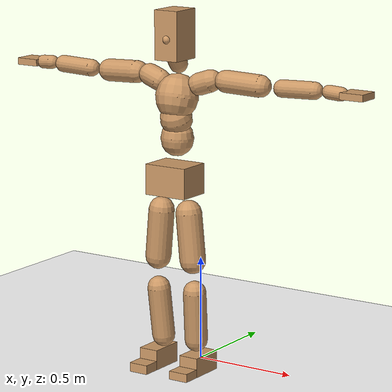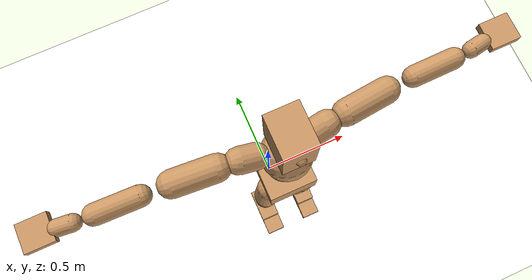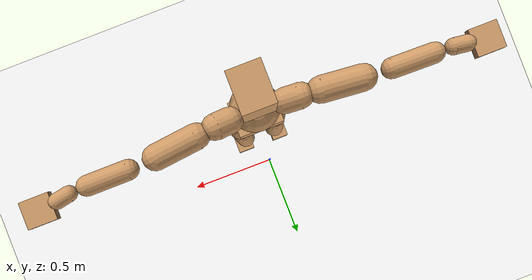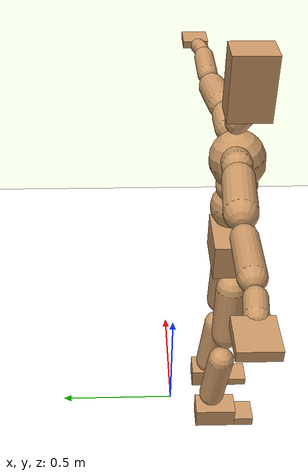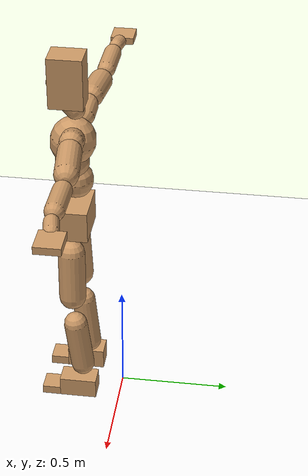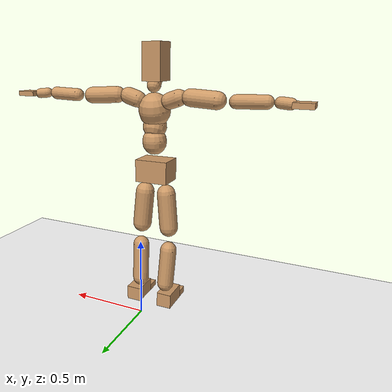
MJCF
<mujoco model="humanoid">
  <option integrator="implicitfast" />

  <visual>
    <global offwidth="1280" offheight="960" />
    <headlight active="1" ambient="0.34 0.34 0.34" diffuse="0.5 0.5 0.5" />
  </visual>

  <default>
    <joint damping="2" stiffness="2" armature="0.01" limited="true" solimplimit="0 .99 .01" />
    <geom condim="1" friction="0.7 0.005 0.0001" solimp=".99 .99 .003" solref="0.015 1" margin="0.001" rgba="0.8 0.6 .4 1" />
    <default class="smplcontact">
      <geom condim="3" friction="1. 0.005 0.0001" solref="0.015 1" solimp="0.98 0.98 0.001" priority="1" />
    </default>
    <default class="stiff_medium">
      <joint stiffness="10" />
    </default>
    <default class="stiff_medium_higher">
      <joint stiffness="50" />
    </default>
    <default class="stiff_high">
      <joint stiffness="100" />
    </default>
  </default>

  <asset>
    <texture type="skybox" builtin="gradient" rgb1="0.99 0.99 0.99" rgb2="0.608 0.828 0.892" width="100" />
    <texture builtin="flat" height="1278" mark="cross" markrgb="1 1 1" name="texgeom" random="0.01" rgb1="0.8 0.6 0.4" rgb2="0.8 0.6 0.4" type="cube" width="127" />
    <texture name="texplane" type="2d" builtin="checker" markrgb="1 1 1" rgb1="0.756 0.772 0.76" rgb2="0.6 0.6 0.6" width="100" height="100" />
    <material name="MatPlane" reflectance="0.5" texture="texplane" texrepeat="1 1" texuniform="true" />
    <material name="geom" texture="texgeom" texuniform="true" />
  </asset>

  <worldbody>
    <light name="tracking_light" pos="0 0 7" dir="0 0 -1" directional="true" cutoff="100" exponent="1" diffuse="1 1 1" specular="0.1 0.1 0.1" mode="trackcom" />
    <camera name="back" pos="0 3 2.4" xyaxes="-1 0 0 0 -1 2" mode="trackcom" />
    <camera name="side" pos="-3 0 2.4" xyaxes="0 -1 0 1 0 2" mode="trackcom" />
    <camera name="front_side" pos="-2.8 -2.8 0.8" xyaxes="0.5 -0.5 0 0.1 0.1 1" mode="trackcom" />
    <geom condim="3" name="floor" pos="0 0 0" rgba="1 1 1 1" size="100 100 .2" type="plane" material="MatPlane" />
    <body name="Pelvis" pos="-0.0018 -0.2233 0.9367" euler="90 0 0">
      <site name="Pelvis" size="0.01" />
      <freejoint name="Pelvis" />
      <geom type="box" pos="-0.0000 -0.0121 -0.0055" size="0.1069 0.0722 0.083" quat="1.0000 0.0000 0.0000 0.0000" density="3165.830099" name="Pelvis" />
      <body name="L_Hip" pos="0.0695 -0.0914 -0.0068">
        <joint name="L_Hip_x" type="hinge" pos="0 0 0" axis="1 0 0" stiffness="10.0" range="-160.0 22.92" class="stiff_medium" damping="15.0" armature="0.01"/>
        <joint name="L_Hip_y" type="hinge" pos="0 0 0" axis="0 1 0" stiffness="10.0" range="-70.0 70.0" class="stiff_medium" damping="10.000000000000004" armature="0.010000000000000009"/>
        <joint name="L_Hip_z" type="hinge" pos="0 0 0" axis="0 0 1" stiffness="10.0" range="-28.65 90.0" class="stiff_medium" damping="9.999999999999998" armature="0.009999999999999998"/>
        <geom type="capsule" density="2040.816327" fromto="0.0069 -0.075 -0.0009 0.0274 -0.3002 -0.0036" size="0.0615" name="L_Hip" />
        <body name="L_Knee" pos="0.0343 -0.3752 -0.0045">
          <joint name="L_Knee_x" type="hinge" pos="0 0 0" axis="1 0 0" range="-5.16 171.89" damping="7.999999999999998" armature="0.009999999999999997" stiffness="2.0"/>
          <joint name="L_Knee_y" type="hinge" pos="0 0 0" axis="0 1 0" range="-4.58 6.88" damping="8.000000000000004" armature="0.010000000000000009" stiffness="2.0"/>
          <joint name="L_Knee_z" type="hinge" pos="0 0 0" axis="0 0 1" range="-6.88 4.58" damping="7.999999999999998" armature="0.009999999999999995" stiffness="2.0"/>
          <geom type="capsule" density="1234.567901" fromto="-0.0027 -0.0796 -0.0087 -0.0109 -0.3184 -0.035" size="0.0541" name="L_Knee" />
          <body name="L_Ankle" pos="-0.0136 -0.398 -0.0437">
            <joint name="L_Ankle_x" type="hinge" pos="0 0 0" axis="1 0 0" range="-45.84 45.84" class="stiff_medium" damping="6.000000000000044" armature="0.010000000000000146" stiffness="10.0"/>
            <joint name="L_Ankle_y" type="hinge" pos="0 0 0" axis="0 1 0" range="-74.48 22.92" class="stiff_medium" damping="3.0000000000000013" armature="0.010000000000000009" stiffness="10.0"/>
            <joint name="L_Ankle_z" type="hinge" pos="0 0 0" axis="0 0 1" range="-4.58 4.58" class="stiff_medium" damping="6.000000000000048" armature="0.01000000000000016" stiffness="10.0"/>
            <geom type="box" pos="0.0233 -0.0239 0.0242" size="0.0483 0.0464 0.085" quat="1.0000 0.0000 0.0000 0.0000" density="449.071558" name="L_Ankle" class="smplcontact" />
            <body name="L_Toe" pos="0.0264 -0.0558 0.1193">
              <joint name="L_Toe_x" type="hinge" pos="0 0 0" axis="1 0 0" range="-91.67 22.92" armature="0.0099999999999988" damping="1.9999999999998799" stiffness="2.0"/>
              <joint name="L_Toe_y" type="hinge" pos="0 0 0" axis="0 1 0" range="-4.58 4.58" armature="0.009999999999999976" damping="1.9999999999999976" stiffness="2.0"/>
              <joint name="L_Toe_z" type="hinge" pos="0 0 0" axis="0 0 1" range="-4.58 4.58" armature="0.009999999999998607" damping="1.9999999999998608" stiffness="2.0"/>
              <geom type="box" pos="-0.003 0.0055 0.0248" size="0.0478 0.02 0.0496" quat="1.0000 0.0000 0.0000 0.0000" density="423.206892" name="L_Toe" class="smplcontact" />
            </body>
          </body>
        </body>
      </body>
      <body name="R_Hip" pos="-0.0677 -0.0905 -0.0043">
        <joint name="R_Hip_x" type="hinge" pos="0 0 0" axis="1 0 0" stiffness="10.0" range="-160.0 22.92" class="stiff_medium" damping="15.0" armature="0.01"/>
        <joint name="R_Hip_y" type="hinge" pos="0 0 0" axis="0 1 0" stiffness="10.0" range="-70.0 70.0" class="stiff_medium" damping="10.000000000000004" armature="0.010000000000000009"/>
        <joint name="R_Hip_z" type="hinge" pos="0 0 0" axis="0 0 1" stiffness="10.0" range="-90.0 28.65" class="stiff_medium" damping="9.999999999999998" armature="0.009999999999999998"/>
        <geom type="capsule" density="2040.816327" fromto="-0.0077 -0.0765 -0.0018 -0.0306 -0.3061 -0.0071" size="0.0606" name="R_Hip" />
        <body name="R_Knee" pos="-0.0383 -0.3826 -0.0089">
          <joint name="R_Knee_x" type="hinge" pos="0 0 0" axis="1 0 0" range="-5.16 171.89" damping="7.999999999999998" armature="0.009999999999999997" stiffness="2.0"/>
          <joint name="R_Knee_y" type="hinge" pos="0 0 0" axis="0 1 0" range="-6.88 4.58" damping="8.000000000000004" armature="0.010000000000000009" stiffness="2.0"/>
          <joint name="R_Knee_z" type="hinge" pos="0 0 0" axis="0 0 1" range="-4.58 6.88" damping="7.999999999999998" armature="0.009999999999999995" stiffness="2.0"/>
          <geom type="capsule" density="1234.567901" fromto="0.0032 -0.0797 -0.0085 0.0126 -0.3187 -0.0338" size="0.0541" name="R_Knee" />
          <body name="R_Ankle" pos="0.0158 -0.3984 -0.0423">
            <joint name="R_Ankle_x" type="hinge" pos="0 0 0" axis="1 0 0" range="-45.84 45.84" class="stiff_medium" damping="6.000000000000044" armature="0.010000000000000146" stiffness="10.0"/>
            <joint name="R_Ankle_y" type="hinge" pos="0 0 0" axis="0 1 0" range="-22.92 74.48" class="stiff_medium" damping="3.0000000000000013" armature="0.010000000000000009" stiffness="10.0"/>
            <joint name="R_Ankle_z" type="hinge" pos="0 0 0" axis="0 0 1" range="-4.58 4.58" class="stiff_medium" damping="6.000000000000048" armature="0.01000000000000016" stiffness="10.0"/>
            <geom type="box" pos="-0.0212 -0.0174 0.0256" size="0.0483 0.0478 0.0865" quat="1.0000 0.0000 0.0000 0.0000" density="434.700981" name="R_Ankle" class="smplcontact" />
            <body name="R_Toe" pos="-0.0254 -0.0481 0.1233">
              <joint name="R_Toe_x" type="hinge" pos="0 0 0" axis="1 0 0" range="-91.67 22.92" armature="0.0099999999999988" damping="1.9999999999998799" stiffness="2.0"/>
              <joint name="R_Toe_y" type="hinge" pos="0 0 0" axis="0 1 0" range="-4.58 4.58" armature="0.009999999999999976" damping="1.9999999999999976" stiffness="2.0"/>
              <joint name="R_Toe_z" type="hinge" pos="0 0 0" axis="0 0 1" range="-4.58 4.58" armature="0.009999999999998607" damping="1.9999999999998608" stiffness="2.0"/>
              <geom type="box" pos="0.0042 0.0045 0.0227" size="0.0479 0.0216 0.0493" quat="1.0000 0.0000 0.0000 0.0000" density="407.384095" name="R_Toe" class="smplcontact" />
            </body>
          </body>
        </body>
      </body>
      <body name="Torso" pos="-0.0025 0.109 -0.0267">
        <joint name="Torso_x" type="hinge" pos="0 0 0" axis="1 0 0" range="-25.78 57.3" class="stiff_medium" damping="15.601174334598195" armature="0.010476265558935357" stiffness="10.325844081632653"/>
        <joint name="Torso_y" type="hinge" pos="0 0 0" axis="0 1 0" range="-57.3 57.3" class="stiff_high" damping="22.821338610517834" armature="0.01266835365649776" stiffness="102.77844897959183"/>
        <joint name="Torso_z" type="hinge" pos="0 0 0" axis="0 0 1" range="-34.38 34.38" class="stiff_high" damping="21.414857312023493" armature="0.01122337813289113" stiffness="102.15197872340424"/>
        <geom type="capsule" density="2040.816327" fromto="0.0025 0.0608 0.0005 0.003 0.0743 0.0006" size="0.0769" name="Torso" />
        <body name="Spine" pos="0.0055 0.1352 0.0011">
          <joint name="Spine_x" type="hinge" pos="0 0 0" axis="1 0 0" stiffness="10.390365918367348" range="-25.78 57.3" class="stiff_medium" damping="15.726774537984076" armature="0.010579519926301018"/>
          <joint name="Spine_y" type="hinge" pos="0 0 0" axis="0 1 0" stiffness="10.39918551020408" range="-57.3 57.3" class="stiff_high" damping="9.18896997574016" armature="0.012686866367473133"/>
          <joint name="Spine_z" type="hinge" pos="0 0 0" axis="0 0 1" stiffness="20.94420693877551" range="-34.38 34.38" class="stiff_high" damping="13.309204568844795" armature="0.011746481097584333"/>
          <geom type="capsule" density="2040.816327" fromto="0.0007 0.0238 0.0114 0.0008 0.0291 0.014" size="0.0755" name="Spine" />
          <body name="Chest" pos="0.0015 0.0529 0.0254">
            <joint name="Chest_x" type="hinge" pos="0 0 0" axis="1 0 0" stiffness="10.58973530612245" range="-25.78 57.3" class="stiff_medium" damping="15.923502909070246" armature="0.01064166541426727"/>
            <joint name="Chest_y" type="hinge" pos="0 0 0" axis="0 1 0" stiffness="11.123088958333334" range="-57.3 57.3" class="stiff_high" damping="9.50489338620591" armature="0.012690803368218224"/>
            <joint name="Chest_z" type="hinge" pos="0 0 0" axis="0 0 1" stiffness="21.003702448979592" range="-34.38 34.38" class="stiff_high" damping="13.458190566120908" armature="0.011976915720374789"/>
            <geom type="capsule" density="2040.816327" fromto="-0.0009 0.0682 -0.0173 -0.001 0.0833 -0.0212" size="0.1002" name="Chest" />
            <body name="Neck" pos="-0.0028 0.2139 -0.0429">
              <joint name="Neck_x" type="hinge" pos="0 0 0" axis="1 0 0" range="-28.65 57.3" class="stiff_medium_higher" damping="9.999999999999996" armature="0.009999999999999993" stiffness="50.0"/>
              <joint name="Neck_y" type="hinge" pos="0 0 0" axis="0 1 0" range="-40.11 40.11" class="stiff_medium_higher" damping="10.0" armature="0.01" stiffness="50.0"/>
              <joint name="Neck_z" type="hinge" pos="0 0 0" axis="0 0 1" range="-40.11 40.11" class="stiff_medium_higher" damping="10.000000000000002" armature="0.010000000000000007" stiffness="50.0"/>
              <geom type="capsule" density="1000" fromto="0.001 0.013 0.0103 0.0041 0.052 0.0411" size="0.0436" name="Neck" />
              <body name="Head" pos="0.0052 0.065 0.0513">
                <joint name="Head_x" type="hinge" pos="0 0 0" axis="1 0 0" range="-28.65 57.3" class="stiff_medium_higher" damping="1.9999999999999953" armature="0.009999999999999955" stiffness="50.0"/>
                <joint name="Head_y" type="hinge" pos="0 0 0" axis="0 1 0" range="-40.11 40.11" class="stiff_medium_higher" damping="1.9999999999999998" armature="0.009999999999999998" stiffness="50.0"/>
                <joint name="Head_z" type="hinge" pos="0 0 0" axis="0 0 1" range="-40.11 40.11" class="stiff_medium_higher" damping="1.999999999999998" armature="0.009999999999999981" stiffness="50.0"/>
                <geom type="box" pos="-0.0042 0.0876 -0.0116" size="0.0606 0.1154 0.076" quat="1.0000 0.0000 0.0000 0.0000" density="1018.069894" name="Head" />
                <geom type="capsule" name="nose" size="0.02 0.01" pos="0 0.07 0.05" quat="1 0 0 0" mass="0" contype="0" conaffinity="0" />
              </body>
            </body>
            <body name="L_Thorax" pos="0.08668 0.13387 -0.03751">
              <joint name="L_Thorax_x" type="hinge" pos="0 0 0" axis="1 0 0" range="-10.89 4.58" class="stiff_medium_higher" damping="23.484953053517255" armature="0.011814903262347128" stiffness="58.352468877551026"/>
              <joint name="L_Thorax_y" type="hinge" pos="0 0 0" axis="0 1 0" range="-28.65 17.19" class="stiff_medium_higher" damping="24.434884191521103" armature="0.012759387174304943" stiffness="58.49257857142858"/>
              <joint name="L_Thorax_z" type="hinge" pos="0 0 0" axis="0 0 1" range="-31.51 40.11" class="stiff_medium_higher" damping="24.435380867856836" armature="0.012760243243334092" stiffness="58.491032142857144"/>
              <geom type="capsule" density="1000" fromto="0.02002 0.00671 -0.00198 0.08008 0.02684 -0.00781" size="0.0521" name="L_Thorax" />
              <body name="L_Shoulder" pos="0.1001 0.03355 -0.00979">
                <joint name="L_Shoulder_x" type="hinge" pos="0 0 0" axis="1 0 0" range="-97.4 97.4" class="stiff_medium" damping="6.9255095022139415" armature="0.011436141131748326" stiffness="11.64988"/>
                <joint name="L_Shoulder_y" type="hinge" pos="0 0 0" axis="0 1 0" range="-108.86 80.21" class="stiff_medium" damping="7.316560324521945" armature="0.012722359703116883" stiffness="11.68809530612245"/>
                <joint name="L_Shoulder_z" type="hinge" pos="0 0 0" axis="0 0 1" range="-97.4 85.94" class="stiff_medium" damping="7.316164081346805" armature="0.01272343570206763" stiffness="11.685841020408162"/>
                <geom type="capsule" density="1000" fromto="0.05709 -0.00286 -0.00605 0.22847 -0.01122 -0.0242" size="0.0517" name="L_Shoulder" />
                <body name="L_Elbow" pos="0.28556 -0.01408 -0.03025">
                  <joint name="L_Elbow_x" type="hinge" pos="0 0 0" axis="1 0 0" range="-17.19 4.58" damping="5.601396344944821" armature="0.010847020977712797" stiffness="2.314046673469388"/>
                  <joint name="L_Elbow_y" type="hinge" pos="0 0 0" axis="0 1 0" range="-180.0 17.19" damping="6.0237984809079705" armature="0.01254268073168433" stiffness="2.3144110204081634"/>
                  <joint name="L_Elbow_z" type="hinge" pos="0 0 0" axis="0 0 1" range="-100.84 4.58" damping="6.024346472417804" armature="0.012548321640758893" stiffness="2.313791530612245"/>
                  <geom type="capsule" density="1000" fromto="0.05478 0.00198 -0.00022 0.21934 0.00792 -0.00099" size="0.0405" name="L_Elbow" />
                  <body name="L_Wrist" pos="0.27412 0.0099 -0.00132">
                    <joint name="L_Wrist_x" type="hinge" pos="0 0 0" axis="1 0 0" range="-180.0 22.92" armature="0.010707540477697683" damping="2.190117585684785" stiffness="2.2398304489795917"/>
                    <joint name="L_Wrist_y" type="hinge" pos="0 0 0" axis="0 1 0" range="-17.19 17.19" armature="0.011962634992803383" damping="2.317938796584461" stiffness="2.245675918367347"/>
                    <joint name="L_Wrist_z" type="hinge" pos="0 0 0" axis="0 0 1" range="-22.92 22.92" armature="0.012031856829646257" damping="2.323414855928797" stiffness="2.2433181632653056"/>
                    <geom type="capsule" density="1000" fromto="0.01848 -0.00176 -0.0033 0.07392 -0.00715 -0.0132" size="0.0318" name="L_Wrist" class="smplcontact" />
                    <body name="L_Hand" pos="0.0924 -0.00902 -0.01639">
                      <joint name="L_Hand_x" type="hinge" pos="0 0 0" axis="1 0 0" range="-17.19 17.19" armature="0.01009148893709321" damping="2.1071912899214946" stiffness="2.1999999999999997"/>
                      <joint name="L_Hand_y" type="hinge" pos="0 0 0" axis="0 1 0" range="-51.57 51.57" armature="0.011106432471592256" damping="2.21061762580067" stiffness="2.1999999999999997"/>
                      <joint name="L_Hand_z" type="hinge" pos="0 0 0" axis="0 0 1" range="-91.67 91.67" armature="0.011376979537969187" damping="2.2373803871283133" stiffness="2.1999999999999997"/>
                      <geom type="box" pos="0.05423 0.0011 -0.00638" size="0.0585 0.0158 0.0538" quat="1.0000 0.0000 0.0000 0.0000" density="400.552564" name="L_Hand" class="smplcontact" />
                    </body>
                  </body>
                </body>
              </body>
            </body>
            <body name="R_Thorax" pos="-0.08998 0.13068 -0.04246">
              <joint name="R_Thorax_x" type="hinge" pos="0 0 0" axis="1 0 0" range="-10.89 4.58" class="stiff_medium_higher" damping="23.484953053517255" armature="0.011814903262347128" stiffness="58.352468877551026"/>
              <joint name="R_Thorax_y" type="hinge" pos="0 0 0" axis="0 1 0" range="-17.19 28.65" class="stiff_medium_higher" damping="24.434884191521103" armature="0.012759387174304943" stiffness="58.49257857142858"/>
              <joint name="R_Thorax_z" type="hinge" pos="0 0 0" axis="0 0 1" range="-40.11 31.51" class="stiff_medium_higher" damping="24.435380867856836" armature="0.012760243243334092" stiffness="58.491032142857144"/>
              <geom type="capsule" density="1000" fromto="-0.02112 0.00715 -0.00198 -0.08448 0.0286 -0.00803" size="0.0511" name="R_Thorax" />
              <body name="R_Shoulder" pos="-0.1056 0.03586 -0.01001">
                <joint name="R_Shoulder_x" type="hinge" pos="0 0 0" axis="1 0 0" range="-97.4 97.4" class="stiff_medium" damping="6.9255095022139415" armature="0.011436141131748326" stiffness="11.64988"/>
                <joint name="R_Shoulder_y" type="hinge" pos="0 0 0" axis="0 1 0" range="-80.21 108.86" class="stiff_medium" damping="7.316560324521945" armature="0.012722359703116883" stiffness="11.68809530612245"/>
                <joint name="R_Shoulder_z" type="hinge" pos="0 0 0" axis="0 0 1" range="-85.94 97.4" class="stiff_medium" damping="7.316164081346805" armature="0.01272343570206763" stiffness="11.685841020408162"/>
                <geom type="capsule" density="1000" fromto="-0.05577 -0.00297 -0.00473 -0.2233 -0.01177 -0.01881" size="0.0531" name="R_Shoulder" />
                <body name="R_Elbow" pos="-0.27907 -0.01463 -0.02354">
                  <joint name="R_Elbow_x" type="hinge" pos="0 0 0" axis="1 0 0" range="-17.19 4.58" damping="5.601396344944821" armature="0.010847020977712797" stiffness="2.314046673469388"/>
                  <joint name="R_Elbow_y" type="hinge" pos="0 0 0" axis="0 1 0" range="-17.19 180.0" damping="6.0237984809079705" armature="0.01254268073168433" stiffness="2.3144110204081634"/>
                  <joint name="R_Elbow_z" type="hinge" pos="0 0 0" axis="0 0 1" range="-4.58 100.84" damping="6.024346472417804" armature="0.012548321640758893" stiffness="2.313791530612245"/>
                  <geom type="capsule" density="1000" fromto="-0.05621 0.00176 -0.00121 -0.22462 0.00682 -0.00484" size="0.0408" name="R_Elbow" />
                  <body name="R_Wrist" pos="-0.28083 0.00858 -0.00616">
                    <joint name="R_Wrist_x" type="hinge" pos="0 0 0" axis="1 0 0" range="-180.0 22.92" armature="0.010707540477697683" damping="2.190117585684785" stiffness="2.2398304489795917"/>
                    <joint name="R_Wrist_y" type="hinge" pos="0 0 0" axis="0 1 0" range="-17.19 17.19" armature="0.011962634992803383" damping="2.317938796584461" stiffness="2.245675918367347"/>
                    <joint name="R_Wrist_z" type="hinge" pos="0 0 0" axis="0 0 1" range="-22.92 22.92" armature="0.012031856829646257" damping="2.323414855928797" stiffness="2.2433181632653056"/>
                    <geom type="capsule" density="1000" fromto="-0.01859 -0.00132 -0.00231 -0.07447 -0.00539 -0.00913" size="0.0326" name="R_Wrist" class="smplcontact" />
                    <body name="R_Hand" pos="-0.09306 -0.00671 -0.01133">
                      <joint name="R_Hand_x" type="hinge" pos="0 0 0" axis="1 0 0" range="-17.19 17.19" armature="0.01009148893709321" damping="2.1071912899214946" stiffness="2.1999999999999997"/>
                      <joint name="R_Hand_y" type="hinge" pos="0 0 0" axis="0 1 0" range="-51.57 51.57" armature="0.011106432471592256" damping="2.21061762580067" stiffness="2.1999999999999997"/>
                      <joint name="R_Hand_z" type="hinge" pos="0 0 0" axis="0 0 1" range="-91.67 91.67" armature="0.011376979537969187" damping="2.2373803871283133" stiffness="2.1999999999999997"/>
                      <geom type="box" pos="-0.05082 -0.00099 -0.00869" size="0.0569 0.0164 0.0546" quat="1.0000 0.0000 0.0000 0.0000" density="403.679611" name="R_Hand" class="smplcontact" />
                    </body>
                  </body>
                </body>
              </body>
            </body>
          </body>
        </body>
      </body>
    </body>
  </worldbody>
  <actuator>
    <general name="L_Hip_x" joint="L_Hip_x" biastype="affine" gainprm="287.33006409732246" biasprm="-215.3247604770444 -180.0 -2.0" ctrllimited="true" ctrlrange="-1 1" forcerange="-360.0 360.0" />
    <general name="L_Hip_y" joint="L_Hip_y" biastype="affine" gainprm="219.9114857512855" biasprm="0.0 -180.0 -2.000000000000001" ctrllimited="true" ctrlrange="-1 1" forcerange="-360.0 360.0" />
    <general name="L_Hip_z" joint="L_Hip_z" biastype="affine" gainprm="186.3749841742145" biasprm="96.3683546488669 -180.0 -1.9999999999999998" ctrllimited="true" ctrlrange="-1 1" forcerange="-360.0 360.0" />
    <general name="L_Knee_x" joint="L_Knee_x" biastype="affine" gainprm="278.10948965903646" biasprm="261.8988715665131 -180.0 -1.9999999999999996" ctrllimited="true" ctrlrange="-1 1" forcerange="-360.0 360.0" />
    <general name="L_Knee_y" joint="L_Knee_y" biastype="affine" gainprm="18.001325905069514" biasprm="3.612831551628262 -180.0 -2.000000000000001" ctrllimited="true" ctrlrange="-1 1" forcerange="-360.0 360.0" />
    <general name="L_Knee_z" joint="L_Knee_z" biastype="affine" gainprm="18.001325905069514" biasprm="-3.612831551628262 -180.0 -1.9999999999999996" ctrllimited="true" ctrlrange="-1 1" forcerange="-360.0 360.0" />
    <general name="L_Ankle_x" joint="L_Ankle_x" biastype="affine" gainprm="72.00530362027807" biasprm="0.0 -90.0 -2.0000000000000147" ctrllimited="true" ctrlrange="-1 1" forcerange="-180.0 180.0" />
    <general name="L_Ankle_y" joint="L_Ankle_y" biastype="affine" gainprm="76.49778111491148" biasprm="-40.49512930477244 -90.0 -2.000000000000001" ctrllimited="true" ctrlrange="-1 1" forcerange="-180.0 180.0" />
    <general name="L_Ankle_z" joint="L_Ankle_z" biastype="affine" gainprm="7.1942471767206255" biasprm="0.0 -90.0 -2.000000000000016" ctrllimited="true" ctrlrange="-1 1" forcerange="-180.0 180.0" />
    <general name="L_Toe_x" joint="L_Toe_x" biastype="affine" gainprm="71.99902043497087" biasprm="-43.19689898685965 -72.0 -0.799999999999952" ctrllimited="true" ctrlrange="-1 1" forcerange="-144.0 144.0" />
    <general name="L_Toe_y" joint="L_Toe_y" biastype="affine" gainprm="5.755397741376501" biasprm="0.0 -72.0 -0.799999999999999" ctrllimited="true" ctrlrange="-1 1" forcerange="-144.0 144.0" />
    <general name="L_Toe_z" joint="L_Toe_z" biastype="affine" gainprm="5.755397741376501" biasprm="0.0 -72.0 -0.7999999999999443" ctrllimited="true" ctrlrange="-1 1" forcerange="-144.0 144.0" />
    <general name="R_Hip_x" joint="R_Hip_x" biastype="affine" gainprm="287.33006409732246" biasprm="-215.3247604770444 -180.0 -2.0" ctrllimited="true" ctrlrange="-1 1" forcerange="-360.0 360.0" />
    <general name="R_Hip_y" joint="R_Hip_y" biastype="affine" gainprm="219.9114857512855" biasprm="0.0 -180.0 -2.000000000000001" ctrllimited="true" ctrlrange="-1 1" forcerange="-360.0 360.0" />
    <general name="R_Hip_z" joint="R_Hip_z" biastype="affine" gainprm="186.3749841742145" biasprm="-96.3683546488669 -180.0 -1.9999999999999998" ctrllimited="true" ctrlrange="-1 1" forcerange="-360.0 360.0" />
    <general name="R_Knee_x" joint="R_Knee_x" biastype="affine" gainprm="278.10948965903646" biasprm="261.8988715665131 -180.0 -1.9999999999999996" ctrllimited="true" ctrlrange="-1 1" forcerange="-360.0 360.0" />
    <general name="R_Knee_y" joint="R_Knee_y" biastype="affine" gainprm="18.001325905069514" biasprm="-3.612831551628262 -180.0 -2.000000000000001" ctrllimited="true" ctrlrange="-1 1" forcerange="-360.0 360.0" />
    <general name="R_Knee_z" joint="R_Knee_z" biastype="affine" gainprm="18.001325905069514" biasprm="3.612831551628262 -180.0 -1.9999999999999996" ctrllimited="true" ctrlrange="-1 1" forcerange="-360.0 360.0" />
    <general name="R_Ankle_x" joint="R_Ankle_x" biastype="affine" gainprm="72.00530362027807" biasprm="0.0 -90.0 -2.0000000000000147" ctrllimited="true" ctrlrange="-1 1" forcerange="-180.0 180.0" />
    <general name="R_Ankle_y" joint="R_Ankle_y" biastype="affine" gainprm="76.49778111491148" biasprm="40.49512930477244 -90.0 -2.000000000000001" ctrllimited="true" ctrlrange="-1 1" forcerange="-180.0 180.0" />
    <general name="R_Ankle_z" joint="R_Ankle_z" biastype="affine" gainprm="7.1942471767206255" biasprm="0.0 -90.0 -2.000000000000016" ctrllimited="true" ctrlrange="-1 1" forcerange="-180.0 180.0" />
    <general name="R_Toe_x" joint="R_Toe_x" biastype="affine" gainprm="71.99902043497087" biasprm="-43.19689898685965 -72.0 -0.799999999999952" ctrllimited="true" ctrlrange="-1 1" forcerange="-144.0 144.0" />
    <general name="R_Toe_y" joint="R_Toe_y" biastype="affine" gainprm="5.755397741376501" biasprm="0.0 -72.0 -0.799999999999999" ctrllimited="true" ctrlrange="-1 1" forcerange="-144.0 144.0" />
    <general name="R_Toe_z" joint="R_Toe_z" biastype="affine" gainprm="5.755397741376501" biasprm="0.0 -72.0 -0.7999999999999443" ctrllimited="true" ctrlrange="-1 1" forcerange="-144.0 144.0" />
    <general name="Torso_x" joint="Torso_x" biastype="affine" gainprm="179.67210854115288" biasprm="68.16640420338393 -247.8202579591837 -4.160313155892852" ctrllimited="true" ctrlrange="-1 1" forcerange="-371.73038693877555 371.73038693877555" />
    <general name="Torso_y" joint="Torso_y" biastype="affine" gainprm="246.68644747989222" biasprm="0.0 -246.6682775510204 -4.564267722103567" ctrllimited="true" ctrlrange="-1 1" forcerange="-370.0024163265306 370.0024163265306" />
    <general name="Torso_z" joint="Torso_z" biastype="affine" gainprm="147.10968486781817" biasprm="0.0 -245.16474893617018 -4.282971462404698" ctrllimited="true" ctrlrange="-1 1" forcerange="-367.74712340425526 367.74712340425526" />
    <general name="Spine_x" joint="Spine_x" biastype="affine" gainprm="180.79480363139655" biasprm="68.5923472612135 -249.36878204081634 -4.19380654346242" ctrllimited="true" ctrlrange="-1 1" forcerange="-374.0531730612245 374.0531730612245" />
    <general name="Spine_y" joint="Spine_y" biastype="affine" gainprm="249.59883668861366" biasprm="0.0 -249.58045224489794 -4.59448498787008" ctrllimited="true" ctrlrange="-1 1" forcerange="-374.3706783673469 374.3706783673469" />
    <general name="Spine_z" joint="Spine_z" biastype="affine" gainprm="150.8093979712465" biasprm="0.0 -251.3304832653061 -4.436401522948265" ctrllimited="true" ctrlrange="-1 1" forcerange="-376.9957248979592 376.9957248979592" />
    <general name="Chest_x" joint="Chest_x" biastype="affine" gainprm="184.26387773258654" biasprm="69.90849092598852 -254.15364734693878 -4.246267442418732" ctrllimited="true" ctrlrange="-1 1" forcerange="-381.2304710204082 381.2304710204082" />
    <general name="Chest_y" joint="Chest_y" biastype="affine" gainprm="266.97379921338467" biasprm="0.0 -266.954135 -4.752446693102955" ctrllimited="true" ctrlrange="-1 1" forcerange="-400.43120250000004 400.43120250000004" />
    <general name="Chest_z" joint="Chest_z" biastype="affine" gainprm="151.23779719887534" biasprm="0.0 -252.0444293877551 -4.486063522040303" ctrllimited="true" ctrlrange="-1 1" forcerange="-378.06664408163266 378.06664408163266" />
    <general name="Neck_x" joint="Neck_x" biastype="affine" gainprm="27.00198885760427" biasprm="9.000662952534757 -36.0 -0.7999999999999997" ctrllimited="true" ctrlrange="-1 1" forcerange="-72.0 72.0" />
    <general name="Neck_y" joint="Neck_y" biastype="affine" gainprm="25.20185626709732" biasprm="0.0 -36.0 -0.8" ctrllimited="true" ctrlrange="-1 1" forcerange="-72.0 72.0" />
    <general name="Neck_z" joint="Neck_z" biastype="affine" gainprm="25.20185626709732" biasprm="0.0 -36.0 -0.8000000000000003" ctrllimited="true" ctrlrange="-1 1" forcerange="-72.0 72.0" />
    <general name="Head_x" joint="Head_x" biastype="affine" gainprm="18.001325905069514" biasprm="6.000441968356505 -24.0 -0.7999999999999982" ctrllimited="true" ctrlrange="-1 1" forcerange="-48.0 48.0" />
    <general name="Head_y" joint="Head_y" biastype="affine" gainprm="16.801237511398213" biasprm="0.0 -24.0 -0.7999999999999999" ctrllimited="true" ctrlrange="-1 1" forcerange="-48.0 48.0" />
    <general name="Head_z" joint="Head_z" biastype="affine" gainprm="16.801237511398213" biasprm="0.0 -24.0 -0.7999999999999993" ctrllimited="true" ctrlrange="-1 1" forcerange="-48.0 48.0" />
    <general name="L_Thorax_x" joint="L_Thorax_x" biastype="affine" gainprm="18.906370442093692" biasprm="-7.711648189373708 -140.04592530612246 -1.8787962442813804" ctrllimited="true" ctrlrange="-1 1" forcerange="-280.0918506122449 280.0918506122449" />
    <general name="L_Thorax_y" joint="L_Thorax_y" biastype="affine" gainprm="56.157011727582464" biasprm="-14.039252931895616 -140.38218857142857 -1.9547907353216882" ctrllimited="true" ctrlrange="-1 1" forcerange="-280.76437714285714 280.76437714285714" />
    <general name="L_Thorax_z" joint="L_Thorax_z" biastype="affine" gainprm="87.73688584405964" biasprm="10.535286487837375 -140.37847714285715 -1.954830469428547" ctrllimited="true" ctrlrange="-1 1" forcerange="-280.7569542857143 280.7569542857143" />
    <general name="L_Shoulder_x" joint="L_Shoulder_x" biastype="affine" gainprm="95.06026349386505" biasprm="0.0 -55.91942399999999 -1.8468025339237177" ctrllimited="true" ctrlrange="-1 1" forcerange="-111.83884799999998 111.83884799999998" />
    <general name="L_Shoulder_y" joint="L_Shoulder_y" biastype="affine" gainprm="92.56674184278414" biasprm="-14.026747521001564 -56.10285746938776 -1.9510827532058521" ctrllimited="true" ctrlrange="-1 1" forcerange="-112.20571493877551 112.20571493877551" />
    <general name="L_Shoulder_z" joint="L_Shoulder_z" biastype="affine" gainprm="89.7440800375507" biasprm="-5.609616871551944 -56.09203689795918 -1.9509770883591484" ctrllimited="true" ctrlrange="-1 1" forcerange="-112.18407379591837 112.18407379591837" />
    <general name="L_Elbow_x" joint="L_Elbow_x" biastype="affine" gainprm="15.82633724808071" biasprm="-9.167207749117953 -83.30568024489797 -0.8962234151911714" ctrllimited="true" ctrlrange="-1 1" forcerange="-166.61136048979594 166.61136048979594" />
    <general name="L_Elbow_y" joint="L_Elbow_y" biastype="affine" gainprm="143.37559998082332" biasprm="-118.37811974683223 -83.31879673469388 -0.9638077569452753" ctrllimited="true" ctrlrange="-1 1" forcerange="-166.63759346938775 166.63759346938775" />
    <general name="L_Elbow_z" joint="L_Elbow_z" biastype="affine" gainprm="76.62969758228138" biasprm="-69.9713023076305 -83.29649510204082 -0.9638954355868488" ctrllimited="true" ctrlrange="-1 1" forcerange="-166.59299020408164 166.59299020408164" />
    <general name="L_Wrist_x" joint="L_Wrist_x" biastype="affine" gainprm="23.797899177015026" biasprm="-18.421910125791054 -13.43898269387755 -0.8760470342739141" ctrllimited="true" ctrlrange="-1 1" forcerange="-26.8779653877551 26.8779653877551" />
    <general name="L_Wrist_y" joint="L_Wrist_y" biastype="affine" gainprm="4.042514408369691" biasprm="0.0 -13.474055510204082 -0.9271755186337844" ctrllimited="true" ctrlrange="-1 1" forcerange="-26.948111020408163 26.948111020408163" />
    <general name="L_Wrist_z" joint="L_Wrist_z" biastype="affine" gainprm="5.384360182093428" biasprm="0.0 -13.459908979591834 -0.9293659423715188" ctrllimited="true" ctrlrange="-1 1" forcerange="-26.919817959183668 26.919817959183668" />
    <general name="L_Hand_x" joint="L_Hand_x" biastype="affine" gainprm="3.9602916991152934" biasprm="0.0 -13.2 -0.8428765159685979" ctrllimited="true" ctrlrange="-1 1" forcerange="-26.4 26.4" />
    <general name="L_Hand_y" joint="L_Hand_y" biastype="affine" gainprm="11.880875097345879" biasprm="0.0 -13.2 -0.8842470503202681" ctrllimited="true" ctrlrange="-1 1" forcerange="-26.4 26.4" />
    <general name="L_Hand_z" joint="L_Hand_z" biastype="affine" gainprm="21.11925189400226" biasprm="0.0 -13.2 -0.8949521548513254" ctrllimited="true" ctrlrange="-1 1" forcerange="-26.4 26.4" />
    <general name="R_Thorax_x" joint="R_Thorax_x" biastype="affine" gainprm="18.906370442093692" biasprm="-7.711648189373708 -140.04592530612246 -1.8787962442813804" ctrllimited="true" ctrlrange="-1 1" forcerange="-280.0918506122449 280.0918506122449" />
    <general name="R_Thorax_y" joint="R_Thorax_y" biastype="affine" gainprm="56.157011727582464" biasprm="14.039252931895607 -140.38218857142857 -1.9547907353216882" ctrllimited="true" ctrlrange="-1 1" forcerange="-280.76437714285714 280.76437714285714" />
    <general name="R_Thorax_z" joint="R_Thorax_z" biastype="affine" gainprm="87.73688584405964" biasprm="-10.535286487837375 -140.37847714285715 -1.954830469428547" ctrllimited="true" ctrlrange="-1 1" forcerange="-280.7569542857143 280.7569542857143" />
    <general name="R_Shoulder_x" joint="R_Shoulder_x" biastype="affine" gainprm="95.06026349386505" biasprm="0.0 -55.91942399999999 -1.8468025339237177" ctrllimited="true" ctrlrange="-1 1" forcerange="-111.83884799999998 111.83884799999998" />
    <general name="R_Shoulder_y" joint="R_Shoulder_y" biastype="affine" gainprm="92.56674184278414" biasprm="14.026747521001564 -56.10285746938776 -1.9510827532058521" ctrllimited="true" ctrlrange="-1 1" forcerange="-112.20571493877551 112.20571493877551" />
    <general name="R_Shoulder_z" joint="R_Shoulder_z" biastype="affine" gainprm="89.7440800375507" biasprm="5.609616871551932 -56.09203689795918 -1.9509770883591484" ctrllimited="true" ctrlrange="-1 1" forcerange="-112.18407379591837 112.18407379591837" />
    <general name="R_Elbow_x" joint="R_Elbow_x" biastype="affine" gainprm="15.82633724808071" biasprm="-9.167207749117953 -83.30568024489797 -0.8962234151911714" ctrllimited="true" ctrlrange="-1 1" forcerange="-166.61136048979594 166.61136048979594" />
    <general name="R_Elbow_y" joint="R_Elbow_y" biastype="affine" gainprm="143.37559998082332" biasprm="118.37811974683223 -83.31879673469388 -0.9638077569452753" ctrllimited="true" ctrlrange="-1 1" forcerange="-166.63759346938775 166.63759346938775" />
    <general name="R_Elbow_z" joint="R_Elbow_z" biastype="affine" gainprm="76.62969758228138" biasprm="69.97130230763048 -83.29649510204082 -0.9638954355868488" ctrllimited="true" ctrlrange="-1 1" forcerange="-166.59299020408164 166.59299020408164" />
    <general name="R_Wrist_x" joint="R_Wrist_x" biastype="affine" gainprm="23.797899177015026" biasprm="-18.421910125791054 -13.43898269387755 -0.8760470342739141" ctrllimited="true" ctrlrange="-1 1" forcerange="-26.8779653877551 26.8779653877551" />
    <general name="R_Wrist_y" joint="R_Wrist_y" biastype="affine" gainprm="4.042514408369691" biasprm="0.0 -13.474055510204082 -0.9271755186337844" ctrllimited="true" ctrlrange="-1 1" forcerange="-26.948111020408163 26.948111020408163" />
    <general name="R_Wrist_z" joint="R_Wrist_z" biastype="affine" gainprm="5.384360182093428" biasprm="0.0 -13.459908979591834 -0.9293659423715188" ctrllimited="true" ctrlrange="-1 1" forcerange="-26.919817959183668 26.919817959183668" />
    <general name="R_Hand_x" joint="R_Hand_x" biastype="affine" gainprm="3.9602916991152934" biasprm="0.0 -13.2 -0.8428765159685979" ctrllimited="true" ctrlrange="-1 1" forcerange="-26.4 26.4" />
    <general name="R_Hand_y" joint="R_Hand_y" biastype="affine" gainprm="11.880875097345879" biasprm="0.0 -13.2 -0.8842470503202681" ctrllimited="true" ctrlrange="-1 1" forcerange="-26.4 26.4" />
    <general name="R_Hand_z" joint="R_Hand_z" biastype="affine" gainprm="21.11925189400226" biasprm="0.0 -13.2 -0.8949521548513254" ctrllimited="true" ctrlrange="-1 1" forcerange="-26.4 26.4" />
  </actuator>
  <contact>
    <exclude body1="Torso" body2="Chest" />
    <exclude body1="Head" body2="Chest" />
    <exclude body1="R_Knee" body2="R_Toe" />
    <exclude body1="R_Knee" body2="L_Ankle" />
    <exclude body1="R_Knee" body2="L_Toe" />
    <exclude body1="L_Knee" body2="L_Toe" />
    <exclude body1="L_Knee" body2="R_Ankle" />
    <exclude body1="L_Knee" body2="R_Toe" />
    <exclude body1="L_Shoulder" body2="Chest" />
    <exclude body1="R_Shoulder" body2="Chest" />
  </contact>
  <sensor>
    <framelinvel name="sensor_Pelvis_framelinvel" objtype="xbody" objname="Pelvis" />
    <framelinvel name="sensor_L_Hip_framelinvel" objtype="xbody" objname="L_Hip" />
    <framelinvel name="sensor_L_Knee_framelinvel" objtype="xbody" objname="L_Knee" />
    <framelinvel name="sensor_L_Ankle_framelinvel" objtype="xbody" objname="L_Ankle" />
    <framelinvel name="sensor_L_Toe_framelinvel" objtype="xbody" objname="L_Toe" />
    <framelinvel name="sensor_R_Hip_framelinvel" objtype="xbody" objname="R_Hip" />
    <framelinvel name="sensor_R_Knee_framelinvel" objtype="xbody" objname="R_Knee" />
    <framelinvel name="sensor_R_Ankle_framelinvel" objtype="xbody" objname="R_Ankle" />
    <framelinvel name="sensor_R_Toe_framelinvel" objtype="xbody" objname="R_Toe" />
    <framelinvel name="sensor_Torso_framelinvel" objtype="xbody" objname="Torso" />
    <framelinvel name="sensor_Spine_framelinvel" objtype="xbody" objname="Spine" />
    <framelinvel name="sensor_Chest_framelinvel" objtype="xbody" objname="Chest" />
    <framelinvel name="sensor_Neck_framelinvel" objtype="xbody" objname="Neck" />
    <framelinvel name="sensor_Head_framelinvel" objtype="xbody" objname="Head" />
    <framelinvel name="sensor_L_Thorax_framelinvel" objtype="xbody" objname="L_Thorax" />
    <framelinvel name="sensor_L_Shoulder_framelinvel" objtype="xbody" objname="L_Shoulder" />
    <framelinvel name="sensor_L_Elbow_framelinvel" objtype="xbody" objname="L_Elbow" />
    <framelinvel name="sensor_L_Wrist_framelinvel" objtype="xbody" objname="L_Wrist" />
    <framelinvel name="sensor_L_Hand_framelinvel" objtype="xbody" objname="L_Hand" />
    <framelinvel name="sensor_R_Thorax_framelinvel" objtype="xbody" objname="R_Thorax" />
    <framelinvel name="sensor_R_Shoulder_framelinvel" objtype="xbody" objname="R_Shoulder" />
    <framelinvel name="sensor_R_Elbow_framelinvel" objtype="xbody" objname="R_Elbow" />
    <framelinvel name="sensor_R_Wrist_framelinvel" objtype="xbody" objname="R_Wrist" />
    <framelinvel name="sensor_R_Hand_framelinvel" objtype="xbody" objname="R_Hand" />
    <frameangvel name="sensor_Pelvis_frameangvel" objtype="xbody" objname="Pelvis" />
    <frameangvel name="sensor_L_Hip_frameangvel" objtype="xbody" objname="L_Hip" />
    <frameangvel name="sensor_L_Knee_frameangvel" objtype="xbody" objname="L_Knee" />
    <frameangvel name="sensor_L_Ankle_frameangvel" objtype="xbody" objname="L_Ankle" />
    <frameangvel name="sensor_L_Toe_frameangvel" objtype="xbody" objname="L_Toe" />
    <frameangvel name="sensor_R_Hip_frameangvel" objtype="xbody" objname="R_Hip" />
    <frameangvel name="sensor_R_Knee_frameangvel" objtype="xbody" objname="R_Knee" />
    <frameangvel name="sensor_R_Ankle_frameangvel" objtype="xbody" objname="R_Ankle" />
    <frameangvel name="sensor_R_Toe_frameangvel" objtype="xbody" objname="R_Toe" />
    <frameangvel name="sensor_Torso_frameangvel" objtype="xbody" objname="Torso" />
    <frameangvel name="sensor_Spine_frameangvel" objtype="xbody" objname="Spine" />
    <frameangvel name="sensor_Chest_frameangvel" objtype="xbody" objname="Chest" />
    <frameangvel name="sensor_Neck_frameangvel" objtype="xbody" objname="Neck" />
    <frameangvel name="sensor_Head_frameangvel" objtype="xbody" objname="Head" />
    <frameangvel name="sensor_L_Thorax_frameangvel" objtype="xbody" objname="L_Thorax" />
    <frameangvel name="sensor_L_Shoulder_frameangvel" objtype="xbody" objname="L_Shoulder" />
    <frameangvel name="sensor_L_Elbow_frameangvel" objtype="xbody" objname="L_Elbow" />
    <frameangvel name="sensor_L_Wrist_frameangvel" objtype="xbody" objname="L_Wrist" />
    <frameangvel name="sensor_L_Hand_frameangvel" objtype="xbody" objname="L_Hand" />
    <frameangvel name="sensor_R_Thorax_frameangvel" objtype="xbody" objname="R_Thorax" />
    <frameangvel name="sensor_R_Shoulder_frameangvel" objtype="xbody" objname="R_Shoulder" />
    <frameangvel name="sensor_R_Elbow_frameangvel" objtype="xbody" objname="R_Elbow" />
    <frameangvel name="sensor_R_Wrist_frameangvel" objtype="xbody" objname="R_Wrist" />
    <frameangvel name="sensor_R_Hand_frameangvel" objtype="xbody" objname="R_Hand" />
    <subtreelinvel name="Chest_subtreelinvel" body="Chest" />
    <gyro name="Pelvis_gyro" site="Pelvis" />
  </sensor>
</mujoco>
